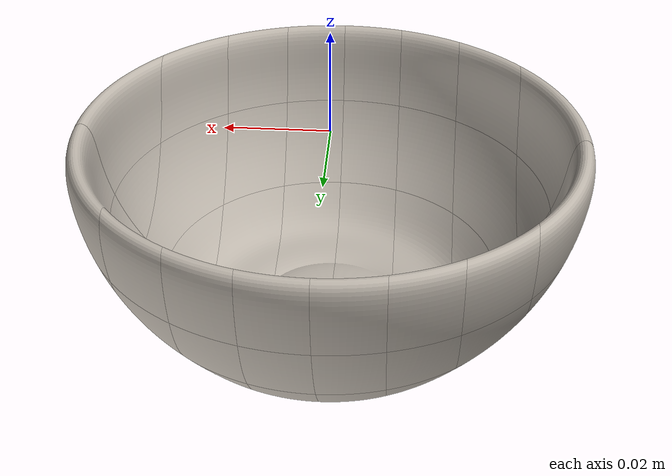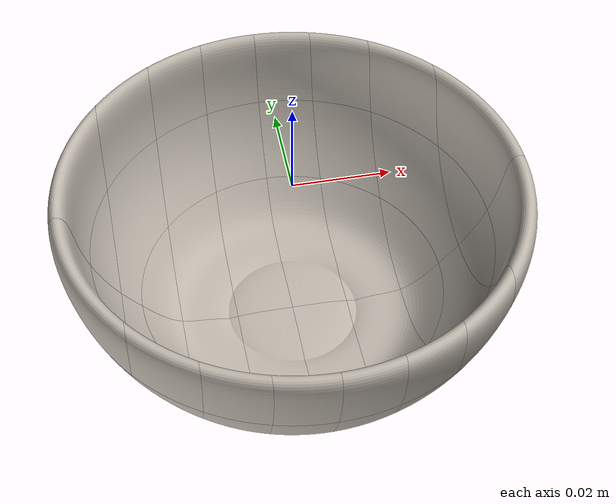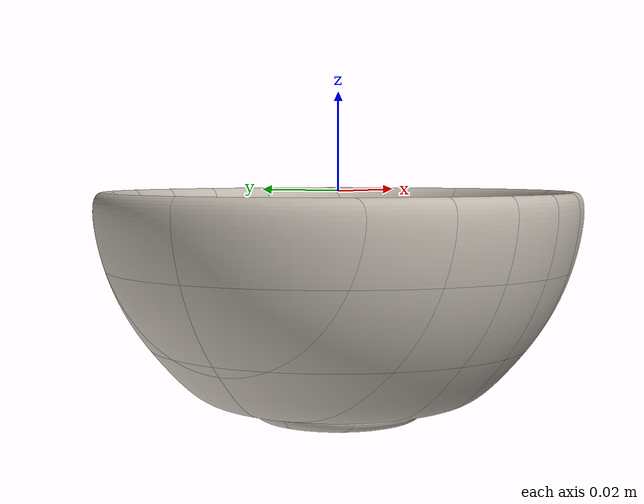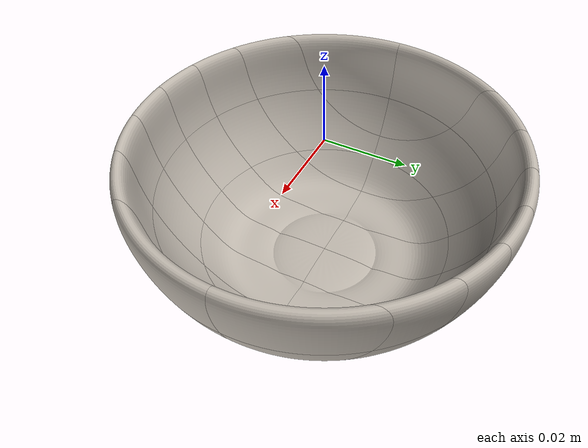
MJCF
<mujoco model="bowl1">
  <asset>
    <mesh file="meshes/bowl1/Bowl1_000.stl" name="bowl1_0_mesh" scale="0.9 0.9 0.9"/>
    <mesh file="meshes/bowl1/Bowl1_001.stl" name="bowl1_1_mesh" scale="0.9 0.9 0.9"/>
    <mesh file="meshes/bowl1/Bowl1_002.stl" name="bowl1_2_mesh" scale="0.9 0.9 0.9"/>
    <mesh file="meshes/bowl1/Bowl1_003.stl" name="bowl1_3_mesh" scale="0.9 0.9 0.9"/>
    <mesh file="meshes/bowl1/Bowl1_004.stl" name="bowl1_4_mesh" scale="0.9 0.9 0.9"/>
    <mesh file="meshes/bowl1/Bowl1_005.stl" name="bowl1_5_mesh" scale="0.9 0.9 0.9"/>
    <mesh file="meshes/bowl1/Bowl1_006.stl" name="bowl1_6_mesh" scale="0.9 0.9 0.9"/>
    <mesh file="meshes/bowl1/Bowl1_007.stl" name="bowl1_7_mesh" scale="0.9 0.9 0.9"/>
    <mesh file="meshes/bowl1/Bowl1_008.stl" name="bowl1_8_mesh" scale="0.9 0.9 0.9"/>
    <mesh file="meshes/bowl1/Bowl1_009.stl" name="bowl1_9_mesh" scale="0.9 0.9 0.9"/>
    <mesh file="meshes/bowl1/Bowl1_010.stl" name="bowl1_10_mesh" scale="0.9 0.9 0.9"/>
    <mesh file="meshes/bowl1/Bowl1_011.stl" name="bowl1_11_mesh" scale="0.9 0.9 0.9"/>
    <mesh file="meshes/bowl1/Bowl1_012.stl" name="bowl1_12_mesh" scale="0.9 0.9 0.9"/>
    <mesh file="meshes/bowl1/Bowl1_013.stl" name="bowl1_13_mesh" scale="0.9 0.9 0.9"/>
    <mesh file="meshes/bowl1/Bowl1_014.stl" name="bowl1_14_mesh" scale="0.9 0.9 0.9"/>
    <mesh file="meshes/bowl1/Bowl1_015.stl" name="bowl1_15_mesh" scale="0.9 0.9 0.9"/>
    <mesh file="meshes/bowl1/Bowl1_016.stl" name="bowl1_16_mesh" scale="0.9 0.9 0.9"/>
    <mesh file="meshes/bowl1/Bowl1_017.stl" name="bowl1_17_mesh" scale="0.9 0.9 0.9"/>
    <mesh file="meshes/bowl1/Bowl1_018.stl" name="bowl1_18_mesh" scale="0.9 0.9 0.9"/>
    <mesh file="meshes/bowl1/Bowl1_019.stl" name="bowl1_19_mesh" scale="0.9 0.9 0.9"/>
    <mesh file="meshes/bowl1/Bowl1_020.stl" name="bowl1_20_mesh" scale="0.9 0.9 0.9"/>
    <mesh file="meshes/bowl1/Bowl1_021.stl" name="bowl1_21_mesh" scale="0.9 0.9 0.9"/>
    <mesh file="meshes/bowl1/Bowl1_022.stl" name="bowl1_22_mesh" scale="0.9 0.9 0.9"/>
    <mesh file="meshes/bowl1/Bowl1_023.stl" name="bowl1_23_mesh" scale="0.9 0.9 0.9"/>
    <mesh file="meshes/bowl1/Bowl1_024.stl" name="bowl1_24_mesh" scale="0.9 0.9 0.9"/>
    <mesh file="meshes/bowl1/Bowl1_025.stl" name="bowl1_25_mesh" scale="0.9 0.9 0.9"/>
    <mesh file="meshes/bowl1/Bowl1_026.stl" name="bowl1_26_mesh" scale="0.9 0.9 0.9"/>
    <mesh file="meshes/bowl1/Bowl1_027.stl" name="bowl1_27_mesh" scale="0.9 0.9 0.9"/>
    <mesh file="meshes/bowl1/Bowl1_028.stl" name="bowl1_28_mesh" scale="0.9 0.9 0.9"/>
    <mesh file="meshes/bowl1/Bowl1_029.stl" name="bowl1_29_mesh" scale="0.9 0.9 0.9"/>
    <mesh file="meshes/bowl1/Bowl1_030.stl" name="bowl1_30_mesh" scale="0.9 0.9 0.9"/>
    <mesh file="meshes/bowl1/Bowl1_031.stl" name="bowl1_31_mesh" scale="0.9 0.9 0.9"/>
    <mesh file="meshes/bowl1/Bowl1_032.stl" name="bowl1_32_mesh" scale="0.9 0.9 0.9"/>
    <mesh file="meshes/bowl1/Bowl1_033.stl" name="bowl1_33_mesh" scale="0.9 0.9 0.9"/>
    <mesh file="meshes/bowl1/Bowl1_034.stl" name="bowl1_34_mesh" scale="0.9 0.9 0.9"/>
    <mesh file="meshes/bowl1/Bowl1_035.stl" name="bowl1_35_mesh" scale="0.9 0.9 0.9"/>
    <mesh file="meshes/bowl1/Bowl1_036.stl" name="bowl1_36_mesh" scale="0.9 0.9 0.9"/>
    <mesh file="meshes/bowl1/Bowl1_037.stl" name="bowl1_37_mesh" scale="0.9 0.9 0.9"/>
    <mesh file="meshes/bowl1/Bowl1_038.stl" name="bowl1_38_mesh" scale="0.9 0.9 0.9"/>
    <mesh file="meshes/bowl1/Bowl1_039.stl" name="bowl1_39_mesh" scale="0.9 0.9 0.9"/>
    <mesh file="meshes/bowl1/Bowl1_040.stl" name="bowl1_40_mesh" scale="0.9 0.9 0.9"/>
    <mesh file="meshes/bowl1/Bowl1_041.stl" name="bowl1_41_mesh" scale="0.9 0.9 0.9"/>
    <mesh file="meshes/bowl1/Bowl1_042.stl" name="bowl1_42_mesh" scale="0.9 0.9 0.9"/>
    <mesh file="meshes/bowl1/Bowl1_043.stl" name="bowl1_43_mesh" scale="0.9 0.9 0.9"/>
    <mesh file="meshes/bowl1/Bowl1_044.stl" name="bowl1_44_mesh" scale="0.9 0.9 0.9"/>
    <mesh file="meshes/bowl1/Bowl1_045.stl" name="bowl1_45_mesh" scale="0.9 0.9 0.9"/>
    <mesh file="meshes/bowl1/Bowl1_046.stl" name="bowl1_46_mesh" scale="0.9 0.9 0.9"/>
    <mesh file="meshes/bowl1/Bowl1_047.stl" name="bowl1_47_mesh" scale="0.9 0.9 0.9"/>
    <texture file="../textures/ceramic.png" name="tex-ceramic"/>
    <material name="ceramic" reflectance="0.5" texrepeat="1 1" texture="tex-ceramic" texuniform="true"/>
  </asset>
  <worldbody>
    <body>
      <body name="object">
        <geom pos="0 0 0" mesh="bowl1_0_mesh" type="mesh" solimp="0.998 0.998 0.001" solref="0.001 1" density="100" friction="0.95 0.3 0.1" material="ceramic" group="0" condim="3"/>
        <geom pos="0 0 0" mesh="bowl1_1_mesh" type="mesh" solimp="0.998 0.998 0.001" solref="0.001 1" density="100" friction="0.95 0.3 0.1" material="ceramic" group="0" condim="3"/>
        <geom pos="0 0 0" mesh="bowl1_2_mesh" type="mesh" solimp="0.998 0.998 0.001" solref="0.001 1" density="100" friction="0.95 0.3 0.1" material="ceramic" group="0" condim="3"/>
        <geom pos="0 0 0" mesh="bowl1_3_mesh" type="mesh" solimp="0.998 0.998 0.001" solref="0.001 1" density="100" friction="0.95 0.3 0.1" material="ceramic" group="0" condim="3"/>
        <geom pos="0 0 0" mesh="bowl1_4_mesh" type="mesh" solimp="0.998 0.998 0.001" solref="0.001 1" density="100" friction="0.95 0.3 0.1" material="ceramic" group="0" condim="3"/>
        <geom pos="0 0 0" mesh="bowl1_5_mesh" type="mesh" solimp="0.998 0.998 0.001" solref="0.001 1" density="100" friction="0.95 0.3 0.1" material="ceramic" group="0" condim="3"/>
        <geom pos="0 0 0" mesh="bowl1_6_mesh" type="mesh" solimp="0.998 0.998 0.001" solref="0.001 1" density="100" friction="0.95 0.3 0.1" material="ceramic" group="0" condim="3"/>
        <geom pos="0 0 0" mesh="bowl1_7_mesh" type="mesh" solimp="0.998 0.998 0.001" solref="0.001 1" density="100" friction="0.95 0.3 0.1" material="ceramic" group="0" condim="3"/>
        <geom pos="0 0 0" mesh="bowl1_8_mesh" type="mesh" solimp="0.998 0.998 0.001" solref="0.001 1" density="100" friction="0.95 0.3 0.1" material="ceramic" group="0" condim="3"/>
        <geom pos="0 0 0" mesh="bowl1_9_mesh" type="mesh" solimp="0.998 0.998 0.001" solref="0.001 1" density="100" friction="0.95 0.3 0.1" material="ceramic" group="0" condim="3"/>
        <geom pos="0 0 0" mesh="bowl1_10_mesh" type="mesh" solimp="0.998 0.998 0.001" solref="0.001 1" density="100" friction="0.95 0.3 0.1" material="ceramic" group="0" condim="3"/>
        <geom pos="0 0 0" mesh="bowl1_11_mesh" type="mesh" solimp="0.998 0.998 0.001" solref="0.001 1" density="100" friction="0.95 0.3 0.1" material="ceramic" group="0" condim="3"/>
        <geom pos="0 0 0" mesh="bowl1_12_mesh" type="mesh" solimp="0.998 0.998 0.001" solref="0.001 1" density="100" friction="0.95 0.3 0.1" material="ceramic" group="0" condim="3"/>
        <geom pos="0 0 0" mesh="bowl1_13_mesh" type="mesh" solimp="0.998 0.998 0.001" solref="0.001 1" density="100" friction="0.95 0.3 0.1" material="ceramic" group="0" condim="3"/>
        <geom pos="0 0 0" mesh="bowl1_14_mesh" type="mesh" solimp="0.998 0.998 0.001" solref="0.001 1" density="100" friction="0.95 0.3 0.1" material="ceramic" group="0" condim="3"/>
        <geom pos="0 0 0" mesh="bowl1_15_mesh" type="mesh" solimp="0.998 0.998 0.001" solref="0.001 1" density="100" friction="0.95 0.3 0.1" material="ceramic" group="0" condim="3"/>
        <geom pos="0 0 0" mesh="bowl1_16_mesh" type="mesh" solimp="0.998 0.998 0.001" solref="0.001 1" density="100" friction="0.95 0.3 0.1" material="ceramic" group="0" condim="3"/>
        <geom pos="0 0 0" mesh="bowl1_17_mesh" type="mesh" solimp="0.998 0.998 0.001" solref="0.001 1" density="100" friction="0.95 0.3 0.1" material="ceramic" group="0" condim="3"/>
        <geom pos="0 0 0" mesh="bowl1_18_mesh" type="mesh" solimp="0.998 0.998 0.001" solref="0.001 1" density="100" friction="0.95 0.3 0.1" material="ceramic" group="0" condim="3"/>
        <geom pos="0 0 0" mesh="bowl1_19_mesh" type="mesh" solimp="0.998 0.998 0.001" solref="0.001 1" density="100" friction="0.95 0.3 0.1" material="ceramic" group="0" condim="3"/>
        <geom pos="0 0 0" mesh="bowl1_20_mesh" type="mesh" solimp="0.998 0.998 0.001" solref="0.001 1" density="100" friction="0.95 0.3 0.1" material="ceramic" group="0" condim="3"/>
        <geom pos="0 0 0" mesh="bowl1_21_mesh" type="mesh" solimp="0.998 0.998 0.001" solref="0.001 1" density="100" friction="0.95 0.3 0.1" material="ceramic" group="0" condim="3"/>
        <geom pos="0 0 0" mesh="bowl1_22_mesh" type="mesh" solimp="0.998 0.998 0.001" solref="0.001 1" density="100" friction="0.95 0.3 0.1" material="ceramic" group="0" condim="3"/>
        <geom pos="0 0 0" mesh="bowl1_23_mesh" type="mesh" solimp="0.998 0.998 0.001" solref="0.001 1" density="100" friction="0.95 0.3 0.1" material="ceramic" group="0" condim="3"/>
        <geom pos="0 0 0" mesh="bowl1_24_mesh" type="mesh" solimp="0.998 0.998 0.001" solref="0.001 1" density="100" friction="0.95 0.3 0.1" material="ceramic" group="0" condim="3"/>
        <geom pos="0 0 0" mesh="bowl1_25_mesh" type="mesh" solimp="0.998 0.998 0.001" solref="0.001 1" density="100" friction="0.95 0.3 0.1" material="ceramic" group="0" condim="3"/>
        <geom pos="0 0 0" mesh="bowl1_26_mesh" type="mesh" solimp="0.998 0.998 0.001" solref="0.001 1" density="100" friction="0.95 0.3 0.1" material="ceramic" group="0" condim="3"/>
        <geom pos="0 0 0" mesh="bowl1_27_mesh" type="mesh" solimp="0.998 0.998 0.001" solref="0.001 1" density="100" friction="0.95 0.3 0.1" material="ceramic" group="0" condim="3"/>
        <geom pos="0 0 0" mesh="bowl1_28_mesh" type="mesh" solimp="0.998 0.998 0.001" solref="0.001 1" density="100" friction="0.95 0.3 0.1" material="ceramic" group="0" condim="3"/>
        <geom pos="0 0 0" mesh="bowl1_29_mesh" type="mesh" solimp="0.998 0.998 0.001" solref="0.001 1" density="100" friction="0.95 0.3 0.1" material="ceramic" group="0" condim="3"/>
        <geom pos="0 0 0" mesh="bowl1_30_mesh" type="mesh" solimp="0.998 0.998 0.001" solref="0.001 1" density="100" friction="0.95 0.3 0.1" material="ceramic" group="0" condim="3"/>
        <geom pos="0 0 0" mesh="bowl1_31_mesh" type="mesh" solimp="0.998 0.998 0.001" solref="0.001 1" density="100" friction="0.95 0.3 0.1" material="ceramic" group="0" condim="3"/>
        <geom pos="0 0 0" mesh="bowl1_32_mesh" type="mesh" solimp="0.998 0.998 0.001" solref="0.001 1" density="100" friction="0.95 0.3 0.1" material="ceramic" group="0" condim="3"/>
        <geom pos="0 0 0" mesh="bowl1_33_mesh" type="mesh" solimp="0.998 0.998 0.001" solref="0.001 1" density="100" friction="0.95 0.3 0.1" material="ceramic" group="0" condim="3"/>
        <geom pos="0 0 0" mesh="bowl1_34_mesh" type="mesh" solimp="0.998 0.998 0.001" solref="0.001 1" density="100" friction="0.95 0.3 0.1" material="ceramic" group="0" condim="3"/>
        <geom pos="0 0 0" mesh="bowl1_35_mesh" type="mesh" solimp="0.998 0.998 0.001" solref="0.001 1" density="100" friction="0.95 0.3 0.1" material="ceramic" group="0" condim="3"/>
        <geom pos="0 0 0" mesh="bowl1_36_mesh" type="mesh" solimp="0.998 0.998 0.001" solref="0.001 1" density="100" friction="0.95 0.3 0.1" material="ceramic" group="0" condim="3"/>
        <geom pos="0 0 0" mesh="bowl1_37_mesh" type="mesh" solimp="0.998 0.998 0.001" solref="0.001 1" density="100" friction="0.95 0.3 0.1" material="ceramic" group="0" condim="3"/>
        <geom pos="0 0 0" mesh="bowl1_38_mesh" type="mesh" solimp="0.998 0.998 0.001" solref="0.001 1" density="100" friction="0.95 0.3 0.1" material="ceramic" group="0" condim="3"/>
        <geom pos="0 0 0" mesh="bowl1_39_mesh" type="mesh" solimp="0.998 0.998 0.001" solref="0.001 1" density="100" friction="0.95 0.3 0.1" material="ceramic" group="0" condim="3"/>
        <geom pos="0 0 0" mesh="bowl1_40_mesh" type="mesh" solimp="0.998 0.998 0.001" solref="0.001 1" density="100" friction="0.95 0.3 0.1" material="ceramic" group="0" condim="3"/>
        <geom pos="0 0 0" mesh="bowl1_41_mesh" type="mesh" solimp="0.998 0.998 0.001" solref="0.001 1" density="100" friction="0.95 0.3 0.1" material="ceramic" group="0" condim="3"/>
        <geom pos="0 0 0" mesh="bowl1_42_mesh" type="mesh" solimp="0.998 0.998 0.001" solref="0.001 1" density="100" friction="0.95 0.3 0.1" material="ceramic" group="0" condim="3"/>
        <geom pos="0 0 0" mesh="bowl1_43_mesh" type="mesh" solimp="0.998 0.998 0.001" solref="0.001 1" density="100" friction="0.95 0.3 0.1" material="ceramic" group="0" condim="3"/>
        <geom pos="0 0 0" mesh="bowl1_44_mesh" type="mesh" solimp="0.998 0.998 0.001" solref="0.001 1" density="100" friction="0.95 0.3 0.1" material="ceramic" group="0" condim="3"/>
        <geom pos="0 0 0" mesh="bowl1_45_mesh" type="mesh" solimp="0.998 0.998 0.001" solref="0.001 1" density="100" friction="0.95 0.3 0.1" material="ceramic" group="0" condim="3"/>
        <geom pos="0 0 0" mesh="bowl1_46_mesh" type="mesh" solimp="0.998 0.998 0.001" solref="0.001 1" density="100" friction="0.95 0.3 0.1" material="ceramic" group="0" condim="3"/>
        <geom pos="0 0 0" mesh="bowl1_47_mesh" type="mesh" solimp="0.998 0.998 0.001" solref="0.001 1" density="100" friction="0.95 0.3 0.1" material="ceramic" group="0" condim="3"/>
      </body>
      <site rgba="0 0 0 0" size="0.005" pos="0 0 -0.135" name="bottom_site"/>
      <site rgba="0 0 0 0" size="0.005" pos="0 0 0.075" name="top_site"/>
      <site rgba="0 0 0 0" size="0.005" pos="0.05 0.05 0" name="horizontal_radius_site"/>
    </body>
  </worldbody>
</mujoco>
